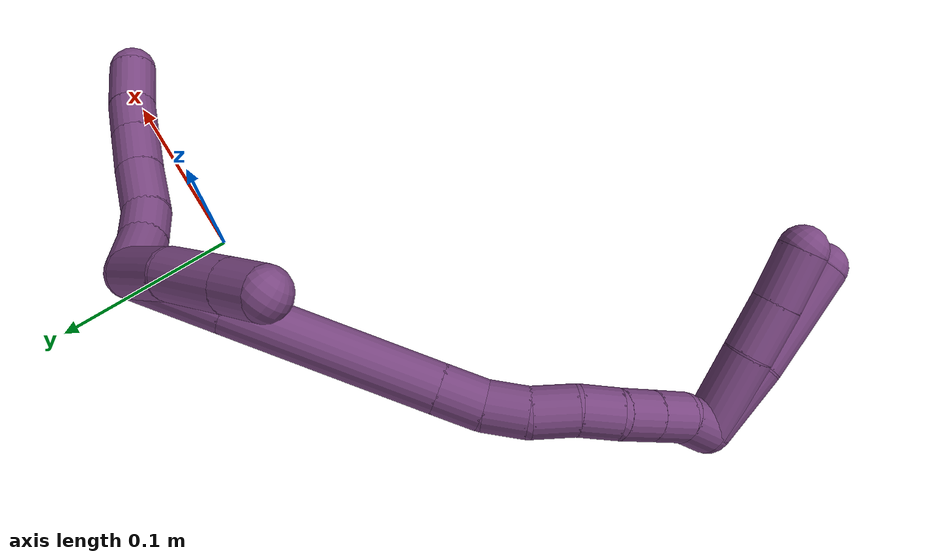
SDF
<sdf version="1.7">
 <world name="default">
  <model name="photoneo_s_sensor">
   <static>1</static>
   <pose>0 0 2 1.57079 1.57079 3.14159</pose>
   <link name="link">
    <inertial><mass>0.1</mass></inertial>
    <sensor name="sensor" type="depth">
     <update_rate>30</update_rate>
     <camera>
      <horizontal_fov>1.22</horizontal_fov>
      <image><width>1920</width><height>1200</height><format>B8G8R8</format></image>
      <clip><near>0.1</near><far>4</far></clip>
      <depth_camera><output>points</output></depth_camera>
     </camera>
     <plugin name="camera_plugin" filename="libgazebo_ros_depth_camera.so">
      <baseline>0.2</baseline>
      <alwaysOn>1</alwaysOn>
      <updateRate>0.0</updateRate>
      <cameraName>camera_ir</cameraName>
      <imageTopicName>/camera/color/image_raw</imageTopicName>
      <cameraInfoTopicName>/camera/color/camera_info</cameraInfoTopicName>
      <depthImageTopicName>/camera/depth/image_raw</depthImageTopicName>
      <depthImageCameraInfoTopicName>/camera/depth/camera_info</depthImageCameraInfoTopicName>
      <pointCloudTopicName>/camera/depth/points</pointCloudTopicName>
      <frameName>fr_optical</frameName>
      <pointCloudCutoff>0.1</pointCloudCutoff>
      <pointCloudCutoffMax>2.0</pointCloudCutoffMax>
      <distortionK1>0</distortionK1>
      <distortionK2>0</distortionK2>
      <distortionK3>0</distortionK3>
      <distortionT1>0</distortionT1>
      <distortionT2>0</distortionT2>
      <CxPrime>0</CxPrime>
      <Cx>0</Cx>
      <Cy>0</Cy>
      <focalLength>0</focalLength>
      <hackBaseline>0</hackBaseline>
     </plugin>
    </sensor>
   </link>
  </model>
  <model name="bin">
   <static>1</static>
   <link name="bottom">
    <collision name="collision-bottom">
     <pose>0 0 -0.01 0 -0 0</pose>
     <geometry><box><size>0.8 0.6 0.02</size></box></geometry>
     <surface>
      <friction><ode><mu>100</mu><mu2>100</mu2></ode></friction>
      <contact><collide_bitmask>65535</collide_bitmask></contact>
     </surface>
    </collision>
   </link>
   <link name="west_wall">
    <collision name="collision-west_wall">
     <pose>-0.41 0 0.1 0 -0 0</pose>
     <geometry><box><size>0.02 0.6 0.2</size></box></geometry>
     <surface>
      <friction><ode><mu>100</mu><mu2>100</mu2></ode></friction>
      <contact><collide_bitmask>65535</collide_bitmask></contact>
     </surface>
    </collision>
   </link>
   <link name="east_wall">
    <collision name="collision-east_wall">
     <pose>0.41 0 0.1 0 -0 0</pose>
     <geometry><box><size>0.02 0.6 0.2</size></box></geometry>
     <surface>
      <friction><ode><mu>100</mu><mu2>100</mu2></ode></friction>
      <contact><collide_bitmask>65535</collide_bitmask></contact>
     </surface>
    </collision>
   </link>
   <link name="south_wall">
    <collision name="collision-south_wall">
     <pose>0 -0.31 0.1 0 -0 0</pose>
     <geometry><box><size>0.8 0.02 0.2</size></box></geometry>
     <surface>
      <friction><ode><mu>100</mu><mu2>100</mu2></ode></friction>
      <contact><collide_bitmask>65535</collide_bitmask></contact>
     </surface>
    </collision>
   </link>
   <link name="north_wall">
    <collision name="collision-north_wall">
     <pose>0 0.31 0.1 0 -0 0</pose>
     <geometry><box><size>0.8 0.02 0.2</size></box></geometry>
     <surface>
      <friction><ode><mu>100</mu><mu2>100</mu2></ode></friction>
      <contact><collide_bitmask>65535</collide_bitmask></contact>
     </surface>
    </collision>
   </link>
  </model>
  <model name="20">
   <static>0</static>
   <link name="20">
    <collision name="collision-cylinder-e_1_2_8">
     <pose>0.011935 -0.004235 0.003497 0.880538 1.13949 0.586211</pose>
     <geometry><cylinder><radius>0.0125</radius><length>0.026276</length></cylinder></geometry>
     <surface>
      <friction><ode><mu>1.16</mu><mu2>1.16</mu2><slip1>0</slip1><slip2>0</slip2></ode></friction>
      <contact><ode><kp>1e+06</kp><kd>1</kd><max_vel>0</max_vel><min_depth>0.001</min_depth></ode></contact>
     </surface>
    </collision>
    <visual name="visual-cylinder-e_1_2_8">
     <pose>0.011935 -0.004235 0.003497 0.880538 1.13949 0.586211</pose>
     <geometry><cylinder><radius>0.0125</radius><length>0.026276</length></cylinder></geometry>
     <material><ambient>0.478431 0.278431 0.509804 1</ambient></material>
    </visual>
    <collision name="collision-cylinder-e_2_8_9">
     <pose>0.033591 -0.009862 0.010576 0.370605 1.19435 0.253569</pose>
     <geometry><cylinder><radius>0.0125</radius><length>0.020906</length></cylinder></geometry>
     <surface>
      <friction><ode><mu>1.16</mu><mu2>1.16</mu2><slip1>0</slip1><slip2>0</slip2></ode></friction>
      <contact><ode><kp>1e+06</kp><kd>1</kd><max_vel>0</max_vel><min_depth>0.001</min_depth></ode></contact>
     </surface>
    </collision>
    <visual name="visual-cylinder-e_2_8_9">
     <pose>0.033591 -0.009862 0.010576 0.370605 1.19435 0.253569</pose>
     <geometry><cylinder><radius>0.0125</radius><length>0.020906</length></cylinder></geometry>
     <material><ambient>0.478431 0.278431 0.509804 1</ambient></material>
    </visual>
    <collision name="collision-cylinder-e_3_9_10">
     <pose>0.056925 -0.009951 0.018507 -0.291079 1.24894 -0.210487</pose>
     <geometry><cylinder><radius>0.0125</radius><length>0.028701</length></cylinder></geometry>
     <surface>
      <friction><ode><mu>1.16</mu><mu2>1.16</mu2><slip1>0</slip1><slip2>0</slip2></ode></friction>
      <contact><ode><kp>1e+06</kp><kd>1</kd><max_vel>0</max_vel><min_depth>0.001</min_depth></ode></contact>
     </surface>
    </collision>
    <visual name="visual-cylinder-e_3_9_10">
     <pose>0.056925 -0.009951 0.018507 -0.291079 1.24894 -0.210487</pose>
     <geometry><cylinder><radius>0.0125</radius><length>0.028701</length></cylinder></geometry>
     <material><ambient>0.478431 0.278431 0.509804 1</ambient></material>
    </visual>
    <collision name="collision-cylinder-e_4_10_11">
     <pose>0.082277 -0.007478 0.027307 -0.257034 1.19708 -0.175812</pose>
     <geometry><cylinder><radius>0.0125</radius><length>0.025218</length></cylinder></geometry>
     <surface>
      <friction><ode><mu>1.16</mu><mu2>1.16</mu2><slip1>0</slip1><slip2>0</slip2></ode></friction>
      <contact><ode><kp>1e+06</kp><kd>1</kd><max_vel>0</max_vel><min_depth>0.001</min_depth></ode></contact>
     </surface>
    </collision>
    <visual name="visual-cylinder-e_4_10_11">
     <pose>0.082277 -0.007478 0.027307 -0.257034 1.19708 -0.175812</pose>
     <geometry><cylinder><radius>0.0125</radius><length>0.025218</length></cylinder></geometry>
     <material><ambient>0.478431 0.278431 0.509804 1</ambient></material>
    </visual>
    <collision name="collision-cylinder-e_5_11_12">
     <pose>0.104134 -0.005053 0.036022 -0.286195 1.15698 -0.187622</pose>
     <geometry><cylinder><radius>0.0125</radius><length>0.022103</length></cylinder></geometry>
     <surface>
      <friction><ode><mu>1.16</mu><mu2>1.16</mu2><slip1>0</slip1><slip2>0</slip2></ode></friction>
      <contact><ode><kp>1e+06</kp><kd>1</kd><max_vel>0</max_vel><min_depth>0.001</min_depth></ode></contact>
     </surface>
    </collision>
    <visual name="visual-cylinder-e_5_11_12">
     <pose>0.104134 -0.005053 0.036022 -0.286195 1.15698 -0.187622</pose>
     <geometry><cylinder><radius>0.0125</radius><length>0.022103</length></cylinder></geometry>
     <material><ambient>0.478431 0.278431 0.509804 1</ambient></material>
    </visual>
    <collision name="collision-cylinder-e_6_12_6">
     <pose>0.126084 -0.002943 0.046515 -0.136517 1.08227 -0.082125</pose>
     <geometry><cylinder><radius>0.0125</radius><length>0.026796</length></cylinder></geometry>
     <surface>
      <friction><ode><mu>1.16</mu><mu2>1.16</mu2><slip1>0</slip1><slip2>0</slip2></ode></friction>
      <contact><ode><kp>1e+06</kp><kd>1</kd><max_vel>0</max_vel><min_depth>0.001</min_depth></ode></contact>
     </surface>
    </collision>
    <visual name="visual-cylinder-e_6_12_6">
     <pose>0.126084 -0.002943 0.046515 -0.136517 1.08227 -0.082125</pose>
     <geometry><cylinder><radius>0.0125</radius><length>0.026796</length></cylinder></geometry>
     <material><ambient>0.478431 0.278431 0.509804 1</ambient></material>
    </visual>
    <collision name="collision-cylinder-e_1_2_13">
     <pose>-0.016209 0.000873 0.010401 -0.08375 -0.998697 0.045701</pose>
     <geometry><cylinder><radius>0.0125</radius><length>0.038557</length></cylinder></geometry>
     <surface>
      <friction><ode><mu>1.16</mu><mu2>1.16</mu2><slip1>0</slip1><slip2>0</slip2></ode></friction>
      <contact><ode><kp>1e+06</kp><kd>1</kd><max_vel>0</max_vel><min_depth>0.001</min_depth></ode></contact>
     </surface>
    </collision>
    <visual name="visual-cylinder-e_1_2_13">
     <pose>-0.016209 0.000873 0.010401 -0.08375 -0.998697 0.045701</pose>
     <geometry><cylinder><radius>0.0125</radius><length>0.038557</length></cylinder></geometry>
     <material><ambient>0.478431 0.278431 0.509804 1</ambient></material>
    </visual>
    <collision name="collision-cylinder-e_2_13_14">
     <pose>-0.049233 -0.001419 0.030613 0.312101 -1.02081 -0.175721</pose>
     <geometry><cylinder><radius>0.0125</radius><length>0.039449</length></cylinder></geometry>
     <surface>
      <friction><ode><mu>1.16</mu><mu2>1.16</mu2><slip1>0</slip1><slip2>0</slip2></ode></friction>
      <contact><ode><kp>1e+06</kp><kd>1</kd><max_vel>0</max_vel><min_depth>0.001</min_depth></ode></contact>
     </surface>
    </collision>
    <visual name="visual-cylinder-e_2_13_14">
     <pose>-0.049233 -0.001419 0.030613 0.312101 -1.02081 -0.175721</pose>
     <geometry><cylinder><radius>0.0125</radius><length>0.039449</length></cylinder></geometry>
     <material><ambient>0.478431 0.278431 0.509804 1</ambient></material>
    </visual>
    <collision name="collision-cylinder-e_3_14_5">
     <pose>-0.075509 -0.006136 0.045812 0.280301 -1.03584 -0.160425</pose>
     <geometry><cylinder><radius>0.0125</radius><length>0.021995</length></cylinder></geometry>
     <surface>
      <friction><ode><mu>1.16</mu><mu2>1.16</mu2><slip1>0</slip1><slip2>0</slip2></ode></friction>
      <contact><ode><kp>1e+06</kp><kd>1</kd><max_vel>0</max_vel><min_depth>0.001</min_depth></ode></contact>
     </surface>
    </collision>
    <visual name="visual-cylinder-e_3_14_5">
     <pose>-0.075509 -0.006136 0.045812 0.280301 -1.03584 -0.160425</pose>
     <geometry><cylinder><radius>0.0125</radius><length>0.021995</length></cylinder></geometry>
     <material><ambient>0.478431 0.278431 0.509804 1</ambient></material>
    </visual>
    <collision name="collision-cylinder-e_1_2_15">
     <pose>-0.013828 -0.017915 0.007103 1.19331 -0.622369 -0.430174</pose>
     <geometry><cylinder><radius>0.0125</radius><length>0.04744</length></cylinder></geometry>
     <surface>
      <friction><ode><mu>1.16</mu><mu2>1.16</mu2><slip1>0</slip1><slip2>0</slip2></ode></friction>
      <contact><ode><kp>1e+06</kp><kd>1</kd><max_vel>0</max_vel><min_depth>0.001</min_depth></ode></contact>
     </surface>
    </collision>
    <visual name="visual-cylinder-e_1_2_15">
     <pose>-0.013828 -0.017915 0.007103 1.19331 -0.622369 -0.430174</pose>
     <geometry><cylinder><radius>0.0125</radius><length>0.04744</length></cylinder></geometry>
     <material><ambient>0.478431 0.278431 0.509804 1</ambient></material>
    </visual>
    <collision name="collision-cylinder-e_2_15_16">
     <pose>-0.058873 -0.07553 0.030324 1.18515 -0.629658 -0.431697</pose>
     <geometry><cylinder><radius>0.0125</radius><length>0.106025</length></cylinder></geometry>
     <surface>
      <friction><ode><mu>1.16</mu><mu2>1.16</mu2><slip1>0</slip1><slip2>0</slip2></ode></friction>
      <contact><ode><kp>1e+06</kp><kd>1</kd><max_vel>0</max_vel><min_depth>0.001</min_depth></ode></contact>
     </surface>
    </collision>
    <visual name="visual-cylinder-e_2_15_16">
     <pose>-0.058873 -0.07553 0.030324 1.18515 -0.629658 -0.431697</pose>
     <geometry><cylinder><radius>0.0125</radius><length>0.106025</length></cylinder></geometry>
     <material><ambient>0.478431 0.278431 0.509804 1</ambient></material>
    </visual>
    <collision name="collision-cylinder-e_3_16_17">
     <pose>-0.096797 -0.12354 0.049932 1.17306 -0.639702 -0.433315</pose>
     <geometry><cylinder><radius>0.0125</radius><length>0.02247</length></cylinder></geometry>
     <surface>
      <friction><ode><mu>1.16</mu><mu2>1.16</mu2><slip1>0</slip1><slip2>0</slip2></ode></friction>
      <contact><ode><kp>1e+06</kp><kd>1</kd><max_vel>0</max_vel><min_depth>0.001</min_depth></ode></contact>
     </surface>
    </collision>
    <visual name="visual-cylinder-e_3_16_17">
     <pose>-0.096797 -0.12354 0.049932 1.17306 -0.639702 -0.433315</pose>
     <geometry><cylinder><radius>0.0125</radius><length>0.02247</length></cylinder></geometry>
     <material><ambient>0.478431 0.278431 0.509804 1</ambient></material>
    </visual>
    <collision name="collision-cylinder-e_4_17_18">
     <pose>-0.109252 -0.13901 0.058639 0.94128 -0.57557 -0.298948</pose>
     <geometry><cylinder><radius>0.0125</radius><length>0.02112</length></cylinder></geometry>
     <surface>
      <friction><ode><mu>1.16</mu><mu2>1.16</mu2><slip1>0</slip1><slip2>0</slip2></ode></friction>
      <contact><ode><kp>1e+06</kp><kd>1</kd><max_vel>0</max_vel><min_depth>0.001</min_depth></ode></contact>
     </surface>
    </collision>
    <visual name="visual-cylinder-e_4_17_18">
     <pose>-0.109252 -0.13901 0.058639 0.94128 -0.57557 -0.298948</pose>
     <geometry><cylinder><radius>0.0125</radius><length>0.02112</length></cylinder></geometry>
     <material><ambient>0.478431 0.278431 0.509804 1</ambient></material>
    </visual>
    <collision name="collision-cylinder-e_5_18_19">
     <pose>-0.118822 -0.154097 0.070908 0.843628 -0.345799 -0.156423</pose>
     <geometry><cylinder><radius>0.0125</radius><length>0.022557</length></cylinder></geometry>
     <surface>
      <friction><ode><mu>1.16</mu><mu2>1.16</mu2><slip1>0</slip1><slip2>0</slip2></ode></friction>
      <contact><ode><kp>1e+06</kp><kd>1</kd><max_vel>0</max_vel><min_depth>0.001</min_depth></ode></contact>
     </surface>
    </collision>
    <visual name="visual-cylinder-e_5_18_19">
     <pose>-0.118822 -0.154097 0.070908 0.843628 -0.345799 -0.156423</pose>
     <geometry><cylinder><radius>0.0125</radius><length>0.022557</length></cylinder></geometry>
     <material><ambient>0.478431 0.278431 0.509804 1</ambient></material>
    </visual>
    <collision name="collision-cylinder-e_6_19_20">
     <pose>-0.126136 -0.170272 0.082799 1.04027 -0.350013 -0.201852</pose>
     <geometry><cylinder><radius>0.0125</radius><length>0.020358</length></cylinder></geometry>
     <surface>
      <friction><ode><mu>1.16</mu><mu2>1.16</mu2><slip1>0</slip1><slip2>0</slip2></ode></friction>
      <contact><ode><kp>1e+06</kp><kd>1</kd><max_vel>0</max_vel><min_depth>0.001</min_depth></ode></contact>
     </surface>
    </collision>
    <visual name="visual-cylinder-e_6_19_20">
     <pose>-0.126136 -0.170272 0.082799 1.04027 -0.350013 -0.201852</pose>
     <geometry><cylinder><radius>0.0125</radius><length>0.020358</length></cylinder></geometry>
     <material><ambient>0.478431 0.278431 0.509804 1</ambient></material>
    </visual>
    <collision name="collision-cylinder-e_7_20_21">
     <pose>-0.13042 -0.18779 0.091309 1.19369 -0.079472 -0.054018</pose>
     <geometry><cylinder><radius>0.0125</radius><length>0.020007</length></cylinder></geometry>
     <surface>
      <friction><ode><mu>1.16</mu><mu2>1.16</mu2><slip1>0</slip1><slip2>0</slip2></ode></friction>
      <contact><ode><kp>1e+06</kp><kd>1</kd><max_vel>0</max_vel><min_depth>0.001</min_depth></ode></contact>
     </surface>
    </collision>
    <visual name="visual-cylinder-e_7_20_21">
     <pose>-0.13042 -0.18779 0.091309 1.19369 -0.079472 -0.054018</pose>
     <geometry><cylinder><radius>0.0125</radius><length>0.020007</length></cylinder></geometry>
     <material><ambient>0.478431 0.278431 0.509804 1</ambient></material>
    </visual>
    <collision name="collision-cylinder-e_8_21_22">
     <pose>-0.131952 -0.206369 0.098571 1.20274 -0.073771 -0.05063</pose>
     <geometry><cylinder><radius>0.0125</radius><length>0.020006</length></cylinder></geometry>
     <surface>
      <friction><ode><mu>1.16</mu><mu2>1.16</mu2><slip1>0</slip1><slip2>0</slip2></ode></friction>
      <contact><ode><kp>1e+06</kp><kd>1</kd><max_vel>0</max_vel><min_depth>0.001</min_depth></ode></contact>
     </surface>
    </collision>
    <visual name="visual-cylinder-e_8_21_22">
     <pose>-0.131952 -0.206369 0.098571 1.20274 -0.073771 -0.05063</pose>
     <geometry><cylinder><radius>0.0125</radius><length>0.020006</length></cylinder></geometry>
     <material><ambient>0.478431 0.278431 0.509804 1</ambient></material>
    </visual>
    <collision name="collision-cylinder-e_9_22_1">
     <pose>-0.133532 -0.225626 0.102859 1.50068 -0.0843 -0.078592</pose>
     <geometry><cylinder><radius>0.0125</radius><length>0.020018</length></cylinder></geometry>
     <surface>
      <friction><ode><mu>1.16</mu><mu2>1.16</mu2><slip1>0</slip1><slip2>0</slip2></ode></friction>
      <contact><ode><kp>1e+06</kp><kd>1</kd><max_vel>0</max_vel><min_depth>0.001</min_depth></ode></contact>
     </surface>
    </collision>
    <visual name="visual-cylinder-e_9_22_1">
     <pose>-0.133532 -0.225626 0.102859 1.50068 -0.0843 -0.078592</pose>
     <geometry><cylinder><radius>0.0125</radius><length>0.020018</length></cylinder></geometry>
     <material><ambient>0.478431 0.278431 0.509804 1</ambient></material>
    </visual>
    <collision name="collision-cylinder-e_1_1_23">
     <pose>-0.131855 -0.237546 0.123735 0.097383 0.123632 0.006032</pose>
     <geometry><cylinder><radius>0.0125</radius><length>0.040857</length></cylinder></geometry>
     <surface>
      <friction><ode><mu>1.16</mu><mu2>1.16</mu2><slip1>0</slip1><slip2>0</slip2></ode></friction>
      <contact><ode><kp>1e+06</kp><kd>1</kd><max_vel>0</max_vel><min_depth>0.001</min_depth></ode></contact>
     </surface>
    </collision>
    <visual name="visual-cylinder-e_1_1_23">
     <pose>-0.131855 -0.237546 0.123735 0.097383 0.123632 0.006032</pose>
     <geometry><cylinder><radius>0.0125</radius><length>0.040857</length></cylinder></geometry>
     <material><ambient>0.478431 0.278431 0.509804 1</ambient></material>
    </visual>
    <collision name="collision-cylinder-e_2_23_4">
     <pose>-0.122841 -0.242925 0.172558 0.11841 0.221441 0.013179</pose>
     <geometry><cylinder><radius>0.0125</radius><length>0.059143</length></cylinder></geometry>
     <surface>
      <friction><ode><mu>1.16</mu><mu2>1.16</mu2><slip1>0</slip1><slip2>0</slip2></ode></friction>
      <contact><ode><kp>1e+06</kp><kd>1</kd><max_vel>0</max_vel><min_depth>0.001</min_depth></ode></contact>
     </surface>
    </collision>
    <visual name="visual-cylinder-e_2_23_4">
     <pose>-0.122841 -0.242925 0.172558 0.11841 0.221441 0.013179</pose>
     <geometry><cylinder><radius>0.0125</radius><length>0.059143</length></cylinder></geometry>
     <material><ambient>0.478431 0.278431 0.509804 1</ambient></material>
    </visual>
    <collision name="collision-cylinder-e_1_1_24">
     <pose>-0.131842 -0.231679 0.124456 -0.184292 0.118578 -0.01097</pose>
     <geometry><cylinder><radius>0.0125</radius><length>0.042817</length></cylinder></geometry>
     <surface>
      <friction><ode><mu>1.16</mu><mu2>1.16</mu2><slip1>0</slip1><slip2>0</slip2></ode></friction>
      <contact><ode><kp>1e+06</kp><kd>1</kd><max_vel>0</max_vel><min_depth>0.001</min_depth></ode></contact>
     </surface>
    </collision>
    <visual name="visual-cylinder-e_1_1_24">
     <pose>-0.131842 -0.231679 0.124456 -0.184292 0.118578 -0.01097</pose>
     <geometry><cylinder><radius>0.0125</radius><length>0.042817</length></cylinder></geometry>
     <material><ambient>0.478431 0.278431 0.509804 1</ambient></material>
    </visual>
    <collision name="collision-cylinder-e_2_24_25">
     <pose>-0.126867 -0.226326 0.159241 -0.104573 0.173171 -0.009085</pose>
     <geometry><cylinder><radius>0.0125</radius><length>0.028351</length></cylinder></geometry>
     <surface>
      <friction><ode><mu>1.16</mu><mu2>1.16</mu2><slip1>0</slip1><slip2>0</slip2></ode></friction>
      <contact><ode><kp>1e+06</kp><kd>1</kd><max_vel>0</max_vel><min_depth>0.001</min_depth></ode></contact>
     </surface>
    </collision>
    <visual name="visual-cylinder-e_2_24_25">
     <pose>-0.126867 -0.226326 0.159241 -0.104573 0.173171 -0.009085</pose>
     <geometry><cylinder><radius>0.0125</radius><length>0.028351</length></cylinder></geometry>
     <material><ambient>0.478431 0.278431 0.509804 1</ambient></material>
    </visual>
    <collision name="collision-cylinder-e_3_25_3">
     <pose>-0.121622 -0.222641 0.187093 -0.158213 0.19562 -0.015556</pose>
     <geometry><cylinder><radius>0.0125</radius><length>0.028833</length></cylinder></geometry>
     <surface>
      <friction><ode><mu>1.16</mu><mu2>1.16</mu2><slip1>0</slip1><slip2>0</slip2></ode></friction>
      <contact><ode><kp>1e+06</kp><kd>1</kd><max_vel>0</max_vel><min_depth>0.001</min_depth></ode></contact>
     </surface>
    </collision>
    <visual name="visual-cylinder-e_3_25_3">
     <pose>-0.121622 -0.222641 0.187093 -0.158213 0.19562 -0.015556</pose>
     <geometry><cylinder><radius>0.0125</radius><length>0.028833</length></cylinder></geometry>
     <material><ambient>0.478431 0.278431 0.509804 1</ambient></material>
    </visual>
    <collision name="collision-sphere-3">
     <pose>-0.11882 -0.220413 0.201058 0 -0 0</pose>
     <geometry><sphere><radius>0.0125</radius></sphere></geometry>
     <surface>
      <friction><ode><mu>1.16</mu><mu2>1.16</mu2><slip1>0</slip1><slip2>0</slip2></ode></friction>
      <contact><ode><kp>1e+06</kp><kd>1</kd><max_vel>0</max_vel><min_depth>0.001</min_depth></ode></contact>
     </surface>
    </collision>
    <visual name="visual-sphere-3">
     <pose>-0.11882 -0.220413 0.201058 0 -0 0</pose>
     <geometry><sphere><radius>0.0125</radius></sphere></geometry>
     <material><ambient>0.478431 0.278431 0.509804 1</ambient></material>
    </visual>
    <collision name="collision-sphere-25">
     <pose>-0.124424 -0.224869 0.173128 0 -0 0</pose>
     <geometry><sphere><radius>0.0125</radius></sphere></geometry>
     <surface>
      <friction><ode><mu>1.16</mu><mu2>1.16</mu2><slip1>0</slip1><slip2>0</slip2></ode></friction>
      <contact><ode><kp>1e+06</kp><kd>1</kd><max_vel>0</max_vel><min_depth>0.001</min_depth></ode></contact>
     </surface>
    </collision>
    <visual name="visual-sphere-25">
     <pose>-0.124424 -0.224869 0.173128 0 -0 0</pose>
     <geometry><sphere><radius>0.0125</radius></sphere></geometry>
     <material><ambient>0.478431 0.278431 0.509804 1</ambient></material>
    </visual>
    <collision name="collision-sphere-24">
     <pose>-0.129309 -0.227784 0.145354 0 -0 0</pose>
     <geometry><sphere><radius>0.0125</radius></sphere></geometry>
     <surface>
      <friction><ode><mu>1.16</mu><mu2>1.16</mu2><slip1>0</slip1><slip2>0</slip2></ode></friction>
      <contact><ode><kp>1e+06</kp><kd>1</kd><max_vel>0</max_vel><min_depth>0.001</min_depth></ode></contact>
     </surface>
    </collision>
    <visual name="visual-sphere-24">
     <pose>-0.129309 -0.227784 0.145354 0 -0 0</pose>
     <geometry><sphere><radius>0.0125</radius></sphere></geometry>
     <material><ambient>0.478431 0.278431 0.509804 1</ambient></material>
    </visual>
    <collision name="collision-sphere-4">
     <pose>-0.116346 -0.246333 0.201206 0 -0 0</pose>
     <geometry><sphere><radius>0.0125</radius></sphere></geometry>
     <surface>
      <friction><ode><mu>1.16</mu><mu2>1.16</mu2><slip1>0</slip1><slip2>0</slip2></ode></friction>
      <contact><ode><kp>1e+06</kp><kd>1</kd><max_vel>0</max_vel><min_depth>0.001</min_depth></ode></contact>
     </surface>
    </collision>
    <visual name="visual-sphere-4">
     <pose>-0.116346 -0.246333 0.201206 0 -0 0</pose>
     <geometry><sphere><radius>0.0125</radius></sphere></geometry>
     <material><ambient>0.478431 0.278431 0.509804 1</ambient></material>
    </visual>
    <collision name="collision-sphere-23">
     <pose>-0.129336 -0.239517 0.143911 0 -0 0</pose>
     <geometry><sphere><radius>0.0125</radius></sphere></geometry>
     <surface>
      <friction><ode><mu>1.16</mu><mu2>1.16</mu2><slip1>0</slip1><slip2>0</slip2></ode></friction>
      <contact><ode><kp>1e+06</kp><kd>1</kd><max_vel>0</max_vel><min_depth>0.001</min_depth></ode></contact>
     </surface>
    </collision>
    <visual name="visual-sphere-23">
     <pose>-0.129336 -0.239517 0.143911 0 -0 0</pose>
     <geometry><sphere><radius>0.0125</radius></sphere></geometry>
     <material><ambient>0.478431 0.278431 0.509804 1</ambient></material>
    </visual>
    <collision name="collision-sphere-1">
     <pose>-0.134374 -0.235575 0.103558 0 -0 0</pose>
     <geometry><sphere><radius>0.0125</radius></sphere></geometry>
     <surface>
      <friction><ode><mu>1.16</mu><mu2>1.16</mu2><slip1>0</slip1><slip2>0</slip2></ode></friction>
      <contact><ode><kp>1e+06</kp><kd>1</kd><max_vel>0</max_vel><min_depth>0.001</min_depth></ode></contact>
     </surface>
    </collision>
    <visual name="visual-sphere-1">
     <pose>-0.134374 -0.235575 0.103558 0 -0 0</pose>
     <geometry><sphere><radius>0.0125</radius></sphere></geometry>
     <material><ambient>0.478431 0.278431 0.509804 1</ambient></material>
    </visual>
    <collision name="collision-sphere-22">
     <pose>-0.132689 -0.215677 0.10216 0 -0 0</pose>
     <geometry><sphere><radius>0.0125</radius></sphere></geometry>
     <surface>
      <friction><ode><mu>1.16</mu><mu2>1.16</mu2><slip1>0</slip1><slip2>0</slip2></ode></friction>
      <contact><ode><kp>1e+06</kp><kd>1</kd><max_vel>0</max_vel><min_depth>0.001</min_depth></ode></contact>
     </surface>
    </collision>
    <visual name="visual-sphere-22">
     <pose>-0.132689 -0.215677 0.10216 0 -0 0</pose>
     <geometry><sphere><radius>0.0125</radius></sphere></geometry>
     <material><ambient>0.478431 0.278431 0.509804 1</ambient></material>
    </visual>
    <collision name="collision-sphere-21">
     <pose>-0.131214 -0.197062 0.094981 0 -0 0</pose>
     <geometry><sphere><radius>0.0125</radius></sphere></geometry>
     <surface>
      <friction><ode><mu>1.16</mu><mu2>1.16</mu2><slip1>0</slip1><slip2>0</slip2></ode></friction>
      <contact><ode><kp>1e+06</kp><kd>1</kd><max_vel>0</max_vel><min_depth>0.001</min_depth></ode></contact>
     </surface>
    </collision>
    <visual name="visual-sphere-21">
     <pose>-0.131214 -0.197062 0.094981 0 -0 0</pose>
     <geometry><sphere><radius>0.0125</radius></sphere></geometry>
     <material><ambient>0.478431 0.278431 0.509804 1</ambient></material>
    </visual>
    <collision name="collision-sphere-12">
     <pose>0.114253 -0.003799 0.040286 0 -0 0</pose>
     <geometry><sphere><radius>0.0125</radius></sphere></geometry>
     <surface>
      <friction><ode><mu>1.16</mu><mu2>1.16</mu2><slip1>0</slip1><slip2>0</slip2></ode></friction>
      <contact><ode><kp>1e+06</kp><kd>1</kd><max_vel>0</max_vel><min_depth>0.001</min_depth></ode></contact>
     </surface>
    </collision>
    <visual name="visual-sphere-12">
     <pose>0.114253 -0.003799 0.040286 0 -0 0</pose>
     <geometry><sphere><radius>0.0125</radius></sphere></geometry>
     <material><ambient>0.478431 0.278431 0.509804 1</ambient></material>
    </visual>
    <collision name="collision-sphere-11">
     <pose>0.094016 -0.006308 0.031759 0 -0 0</pose>
     <geometry><sphere><radius>0.0125</radius></sphere></geometry>
     <surface>
      <friction><ode><mu>1.16</mu><mu2>1.16</mu2><slip1>0</slip1><slip2>0</slip2></ode></friction>
      <contact><ode><kp>1e+06</kp><kd>1</kd><max_vel>0</max_vel><min_depth>0.001</min_depth></ode></contact>
     </surface>
    </collision>
    <visual name="visual-sphere-11">
     <pose>0.094016 -0.006308 0.031759 0 -0 0</pose>
     <geometry><sphere><radius>0.0125</radius></sphere></geometry>
     <material><ambient>0.478431 0.278431 0.509804 1</ambient></material>
    </visual>
    <collision name="collision-sphere-10">
     <pose>0.070539 -0.008648 0.022855 0 -0 0</pose>
     <geometry><sphere><radius>0.0125</radius></sphere></geometry>
     <surface>
      <friction><ode><mu>1.16</mu><mu2>1.16</mu2><slip1>0</slip1><slip2>0</slip2></ode></friction>
      <contact><ode><kp>1e+06</kp><kd>1</kd><max_vel>0</max_vel><min_depth>0.001</min_depth></ode></contact>
     </surface>
    </collision>
    <visual name="visual-sphere-10">
     <pose>0.070539 -0.008648 0.022855 0 -0 0</pose>
     <geometry><sphere><radius>0.0125</radius></sphere></geometry>
     <material><ambient>0.478431 0.278431 0.509804 1</ambient></material>
    </visual>
    <collision name="collision-sphere-9">
     <pose>0.043312 -0.011254 0.014158 0 -0 0</pose>
     <geometry><sphere><radius>0.0125</radius></sphere></geometry>
     <surface>
      <friction><ode><mu>1.16</mu><mu2>1.16</mu2><slip1>0</slip1><slip2>0</slip2></ode></friction>
      <contact><ode><kp>1e+06</kp><kd>1</kd><max_vel>0</max_vel><min_depth>0.001</min_depth></ode></contact>
     </surface>
    </collision>
    <visual name="visual-sphere-9">
     <pose>0.043312 -0.011254 0.014158 0 -0 0</pose>
     <geometry><sphere><radius>0.0125</radius></sphere></geometry>
     <material><ambient>0.478431 0.278431 0.509804 1</ambient></material>
    </visual>
    <collision name="collision-sphere-2">
     <geometry><sphere><radius>0.0125</radius></sphere></geometry>
     <surface>
      <friction><ode><mu>1.16</mu><mu2>1.16</mu2><slip1>0</slip1><slip2>0</slip2></ode></friction>
      <contact><ode><kp>1e+06</kp><kd>1</kd><max_vel>0</max_vel><min_depth>0.001</min_depth></ode></contact>
     </surface>
    </collision>
    <visual name="visual-sphere-2">
     <geometry><sphere><radius>0.0125</radius></sphere></geometry>
     <material><ambient>0.478431 0.278431 0.509804 1</ambient></material>
    </visual>
    <collision name="collision-sphere-19">
     <pose>-0.122645 -0.162024 0.077961 0 -0 0</pose>
     <geometry><sphere><radius>0.0125</radius></sphere></geometry>
     <surface>
      <friction><ode><mu>1.16</mu><mu2>1.16</mu2><slip1>0</slip1><slip2>0</slip2></ode></friction>
      <contact><ode><kp>1e+06</kp><kd>1</kd><max_vel>0</max_vel><min_depth>0.001</min_depth></ode></contact>
     </surface>
    </collision>
    <visual name="visual-sphere-19">
     <pose>-0.122645 -0.162024 0.077961 0 -0 0</pose>
     <geometry><sphere><radius>0.0125</radius></sphere></geometry>
     <material><ambient>0.478431 0.278431 0.509804 1</ambient></material>
    </visual>
    <collision name="collision-sphere-8">
     <pose>0.02387 -0.00847 0.006994 0 -0 0</pose>
     <geometry><sphere><radius>0.0125</radius></sphere></geometry>
     <surface>
      <friction><ode><mu>1.16</mu><mu2>1.16</mu2><slip1>0</slip1><slip2>0</slip2></ode></friction>
      <contact><ode><kp>1e+06</kp><kd>1</kd><max_vel>0</max_vel><min_depth>0.001</min_depth></ode></contact>
     </surface>
    </collision>
    <visual name="visual-sphere-8">
     <pose>0.02387 -0.00847 0.006994 0 -0 0</pose>
     <geometry><sphere><radius>0.0125</radius></sphere></geometry>
     <material><ambient>0.478431 0.278431 0.509804 1</ambient></material>
    </visual>
    <collision name="collision-sphere-6">
     <pose>0.137915 -0.002087 0.052745 0 -0 0</pose>
     <geometry><sphere><radius>0.0125</radius></sphere></geometry>
     <surface>
      <friction><ode><mu>1.16</mu><mu2>1.16</mu2><slip1>0</slip1><slip2>0</slip2></ode></friction>
      <contact><ode><kp>1e+06</kp><kd>1</kd><max_vel>0</max_vel><min_depth>0.001</min_depth></ode></contact>
     </surface>
    </collision>
    <visual name="visual-sphere-6">
     <pose>0.137915 -0.002087 0.052745 0 -0 0</pose>
     <geometry><sphere><radius>0.0125</radius></sphere></geometry>
     <material><ambient>0.478431 0.278431 0.509804 1</ambient></material>
    </visual>
    <collision name="collision-sphere-13">
     <pose>-0.032417 0.001746 0.020801 0 -0 0</pose>
     <geometry><sphere><radius>0.0125</radius></sphere></geometry>
     <surface>
      <friction><ode><mu>1.16</mu><mu2>1.16</mu2><slip1>0</slip1><slip2>0</slip2></ode></friction>
      <contact><ode><kp>1e+06</kp><kd>1</kd><max_vel>0</max_vel><min_depth>0.001</min_depth></ode></contact>
     </surface>
    </collision>
    <visual name="visual-sphere-13">
     <pose>-0.032417 0.001746 0.020801 0 -0 0</pose>
     <geometry><sphere><radius>0.0125</radius></sphere></geometry>
     <material><ambient>0.478431 0.278431 0.509804 1</ambient></material>
    </visual>
    <collision name="collision-sphere-14">
     <pose>-0.066048 -0.004585 0.040424 0 -0 0</pose>
     <geometry><sphere><radius>0.0125</radius></sphere></geometry>
     <surface>
      <friction><ode><mu>1.16</mu><mu2>1.16</mu2><slip1>0</slip1><slip2>0</slip2></ode></friction>
      <contact><ode><kp>1e+06</kp><kd>1</kd><max_vel>0</max_vel><min_depth>0.001</min_depth></ode></contact>
     </surface>
    </collision>
    <visual name="visual-sphere-14">
     <pose>-0.066048 -0.004585 0.040424 0 -0 0</pose>
     <geometry><sphere><radius>0.0125</radius></sphere></geometry>
     <material><ambient>0.478431 0.278431 0.509804 1</ambient></material>
    </visual>
    <collision name="collision-sphere-5">
     <pose>-0.08497 -0.007687 0.051199 0 -0 0</pose>
     <geometry><sphere><radius>0.0125</radius></sphere></geometry>
     <surface>
      <friction><ode><mu>1.16</mu><mu2>1.16</mu2><slip1>0</slip1><slip2>0</slip2></ode></friction>
      <contact><ode><kp>1e+06</kp><kd>1</kd><max_vel>0</max_vel><min_depth>0.001</min_depth></ode></contact>
     </surface>
    </collision>
    <visual name="visual-sphere-5">
     <pose>-0.08497 -0.007687 0.051199 0 -0 0</pose>
     <geometry><sphere><radius>0.0125</radius></sphere></geometry>
     <material><ambient>0.478431 0.278431 0.509804 1</ambient></material>
    </visual>
    <collision name="collision-sphere-15">
     <pose>-0.027655 -0.035831 0.014207 0 -0 0</pose>
     <geometry><sphere><radius>0.0125</radius></sphere></geometry>
     <surface>
      <friction><ode><mu>1.16</mu><mu2>1.16</mu2><slip1>0</slip1><slip2>0</slip2></ode></friction>
      <contact><ode><kp>1e+06</kp><kd>1</kd><max_vel>0</max_vel><min_depth>0.001</min_depth></ode></contact>
     </surface>
    </collision>
    <visual name="visual-sphere-15">
     <pose>-0.027655 -0.035831 0.014207 0 -0 0</pose>
     <geometry><sphere><radius>0.0125</radius></sphere></geometry>
     <material><ambient>0.478431 0.278431 0.509804 1</ambient></material>
    </visual>
    <collision name="collision-sphere-16">
     <pose>-0.09009 -0.115229 0.046441 0 -0 0</pose>
     <geometry><sphere><radius>0.0125</radius></sphere></geometry>
     <surface>
      <friction><ode><mu>1.16</mu><mu2>1.16</mu2><slip1>0</slip1><slip2>0</slip2></ode></friction>
      <contact><ode><kp>1e+06</kp><kd>1</kd><max_vel>0</max_vel><min_depth>0.001</min_depth></ode></contact>
     </surface>
    </collision>
    <visual name="visual-sphere-16">
     <pose>-0.09009 -0.115229 0.046441 0 -0 0</pose>
     <geometry><sphere><radius>0.0125</radius></sphere></geometry>
     <material><ambient>0.478431 0.278431 0.509804 1</ambient></material>
    </visual>
    <collision name="collision-sphere-17">
     <pose>-0.103504 -0.13185 0.053423 0 -0 0</pose>
     <geometry><sphere><radius>0.0125</radius></sphere></geometry>
     <surface>
      <friction><ode><mu>1.16</mu><mu2>1.16</mu2><slip1>0</slip1><slip2>0</slip2></ode></friction>
      <contact><ode><kp>1e+06</kp><kd>1</kd><max_vel>0</max_vel><min_depth>0.001</min_depth></ode></contact>
     </surface>
    </collision>
    <visual name="visual-sphere-17">
     <pose>-0.103504 -0.13185 0.053423 0 -0 0</pose>
     <geometry><sphere><radius>0.0125</radius></sphere></geometry>
     <material><ambient>0.478431 0.278431 0.509804 1</ambient></material>
    </visual>
    <collision name="collision-sphere-18">
     <pose>-0.114999 -0.14617 0.063854 0 -0 0</pose>
     <geometry><sphere><radius>0.0125</radius></sphere></geometry>
     <surface>
      <friction><ode><mu>1.16</mu><mu2>1.16</mu2><slip1>0</slip1><slip2>0</slip2></ode></friction>
      <contact><ode><kp>1e+06</kp><kd>1</kd><max_vel>0</max_vel><min_depth>0.001</min_depth></ode></contact>
     </surface>
    </collision>
    <visual name="visual-sphere-18">
     <pose>-0.114999 -0.14617 0.063854 0 -0 0</pose>
     <geometry><sphere><radius>0.0125</radius></sphere></geometry>
     <material><ambient>0.478431 0.278431 0.509804 1</ambient></material>
    </visual>
    <collision name="collision-sphere-20">
     <pose>-0.129626 -0.178519 0.087637 0 -0 0</pose>
     <geometry><sphere><radius>0.0125</radius></sphere></geometry>
     <surface>
      <friction><ode><mu>1.16</mu><mu2>1.16</mu2><slip1>0</slip1><slip2>0</slip2></ode></friction>
      <contact><ode><kp>1e+06</kp><kd>1</kd><max_vel>0</max_vel><min_depth>0.001</min_depth></ode></contact>
     </surface>
    </collision>
    <visual name="visual-sphere-20">
     <pose>-0.129626 -0.178519 0.087637 0 -0 0</pose>
     <geometry><sphere><radius>0.0125</radius></sphere></geometry>
     <material><ambient>0.478431 0.278431 0.509804 1</ambient></material>
    </visual>
    <inertial>
     <pose>-0.058366 -0.109176 0.068995 0 -0 0</pose>
     <mass>0.75</mass>
     <inertia><ixx>0.000103</ixx><ixy>0</ixy><ixz>0</ixz><iyy>8e-05</iyy><iyz>0</iyz><izz>0.000191</izz></inertia>
    </inertial>
   </link>
   <pose>-0.030324 0.0467 0.095315 1.04002 0.549234 -0.040584</pose>
  </model>
 </world>
</sdf>
